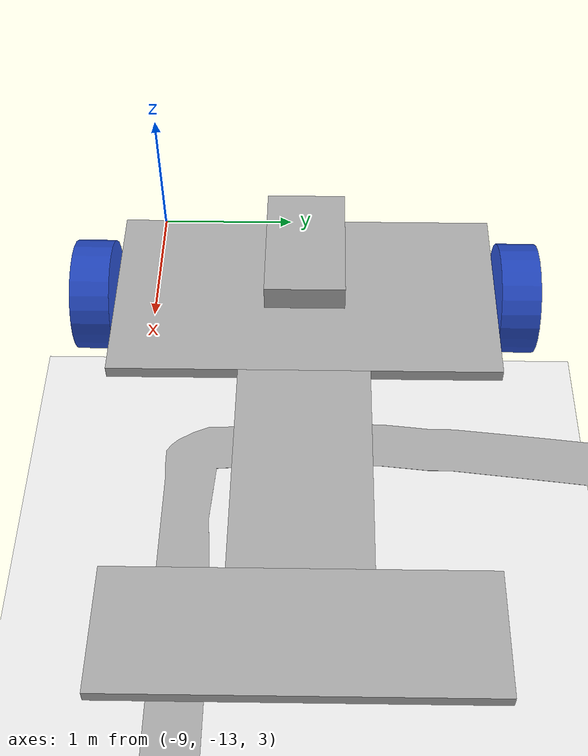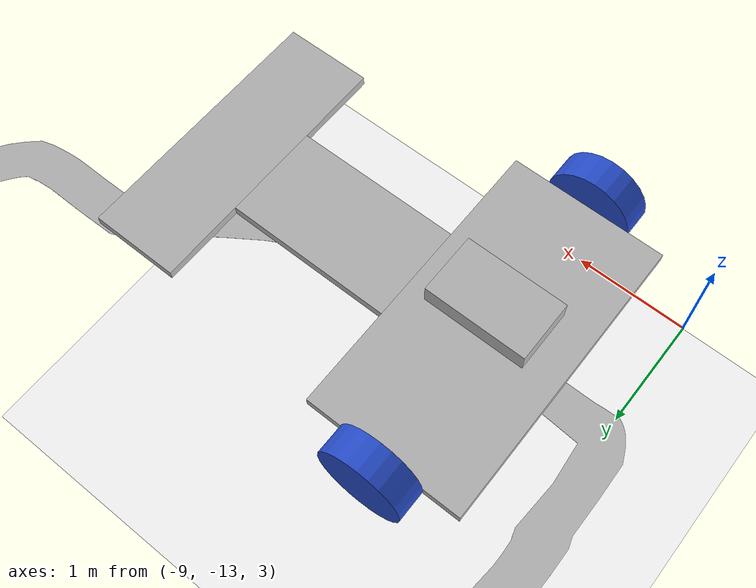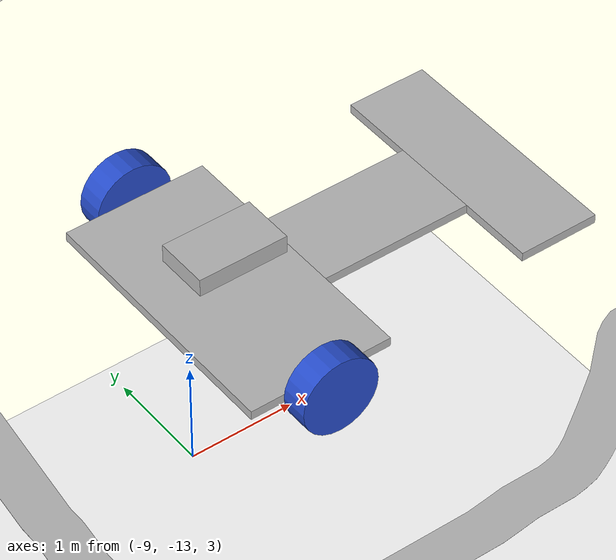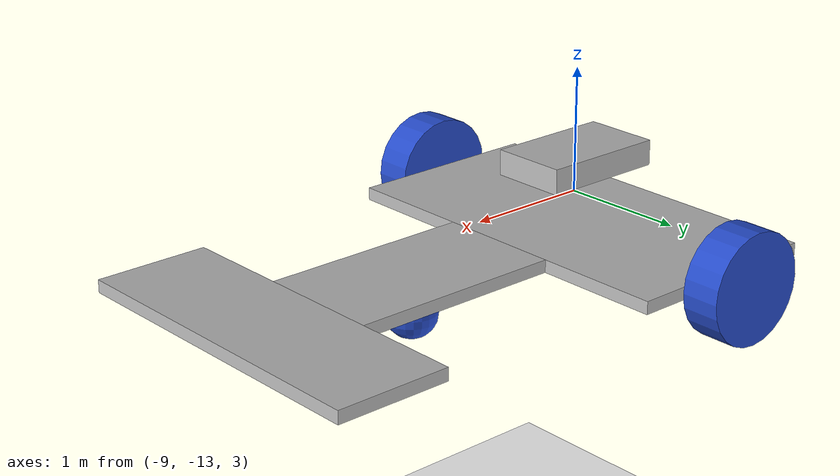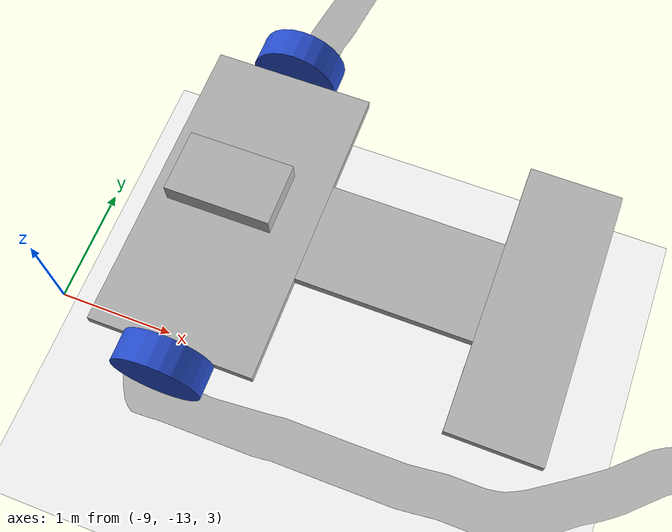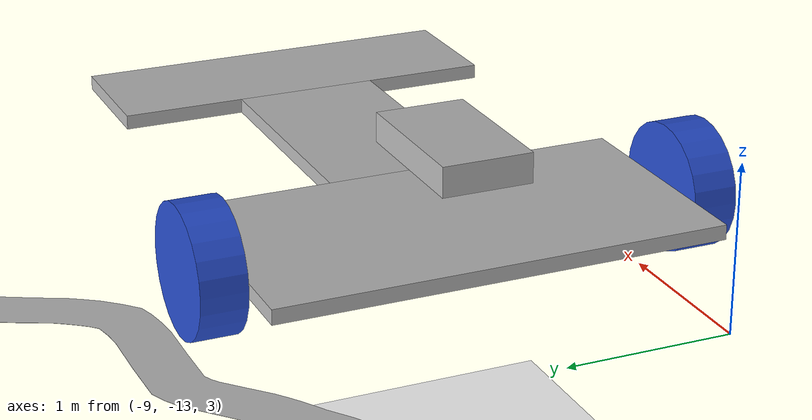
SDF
<sdf version='1.7'>
  <world name='line_follower'>
    <plugin name='gazebo_ros_init' filename='libgazebo_ros_init.so'/>
    <plugin name='gazebo_ros_factory' filename='libgazebo_ros_factory.so'/>
    <plugin name='gazebo_ros_api_plugin' filename='libgazebo_ros_api_plugin.so'/>
    <plugin name='gazebo_ros_state' filename='libgazebo_ros_state.so'/>
    <light name='sun_light' type='directional'>
      <cast_shadows>1</cast_shadows>
      <pose>0 0 10 0 -0 0</pose>
      <diffuse>0.8 0.8 0.8 1</diffuse>
      <specular>0.2 0.2 0.2 1</specular>
      <attenuation>
        <range>1000</range>
        <constant>0.9</constant>
        <linear>0.01</linear>
        <quadratic>0.001</quadratic>
      </attenuation>
      <direction>-0.5 0.1 -0.9</direction>
    </light>
    <model name='high_reflective_plane'>
      <static>1</static>
      <link name='link'>
        <collision name='collision'>
          <geometry>
            <plane>
              <normal>0 0 1</normal>
              <size>100 100</size>
            </plane>
          </geometry>
          <surface>
            <friction>
              <ode>
                <mu>5</mu>
                <mu2>1</mu2>
              </ode>
            </friction>
            <contact>
              <ode>
                <laser_retro>1.0</laser_retro>
              </ode>
            </contact>
          </surface>
        </collision>
        <visual name='visual'>
          <cast_shadows>0</cast_shadows>
          <geometry>
            <plane>
              <normal>0 0 1</normal>
              <size>100 100</size>
            </plane>
          </geometry>
          <material>
            <ambient>1 1 1 1</ambient>
            <diffuse>1 1 1 1</diffuse>
            <specular>1 1 1 1</specular>
            <emissive>0 0 0 1</emissive>
          </material>
        </visual>
      </link>
    </model>
    <model name='line_following_track'>
      <static>1</static>
      <link name='tinker_link'>
        <visual name='tinker_visual'>
          <geometry>
            <mesh>
              <uri>model://tinker/meshes/tinker.obj</uri>
              <scale>0.25 0.25 0.25</scale>
            </mesh>
          </geometry>
          <material>
            <script>
              <uri>model://tinker/meshes/obj.mtl</uri>
              <name>tinker_material</name>
            </script>
          </material>
        </visual>
        <collision name='tinker_collision'>
          <geometry>
            <mesh>
              <uri>model://tinker/meshes/tinker.obj</uri>
              <scale>0.25 0.25 0.25</scale>
            </mesh>
          </geometry>
          <laser_retro>200</laser_retro>
          <surface>
            <contact>
              <collide_without_contact>1</collide_without_contact>
              <collide_without_contact_bitmask>1</collide_without_contact_bitmask>
            </contact>
          </surface>
        </collision>
      </link>
    </model>
    <model name='line_follower_robot'>
      <link name='base_footprint'>
        <inertial>
          <pose>1.47813 0 0.379649 0 -0 0</pose>
          <mass>6.55</mass>
          <inertia>
            <ixx>0.272886</ixx>
            <ixy>-1.63324e-17</ixy>
            <ixz>0.0424508</ixz>
            <iyy>7.86908</iyy>
            <iyz>7.65344e-19</iyz>
            <izz>8.10009</izz>
          </inertia>
        </inertial>
        <collision name='base_footprint_fixed_joint_lump__base_link_collision'>
          <pose>0 0 0.387 0 -0 0</pose>
          <geometry>
            <box>
              <size>1.44 2.7 0.09</size>
            </box>
          </geometry>
        </collision>
        <collision name='base_footprint_fixed_joint_lump__ir_link_collision_1'>
          <pose>2.655 0 0.387 0 -0 0</pose>
          <geometry>
            <box>
              <size>0.81 2.43 0.09</size>
            </box>
          </geometry>
        </collision>
        <collision name='base_footprint_fixed_joint_lump__ir_sensor_1_collision_2'>
          <pose>2.65507 0 0.225 3.14159 1.57079 3.14159</pose>
          <geometry>
            <box>
              <size>0.18 0.054 0.054</size>
            </box>
          </geometry>
          <surface>
            <contact>
              <ode/>
            </contact>
            <friction>
              <ode/>
            </friction>
          </surface>
        </collision>
        <collision name='base_footprint_fixed_joint_lump__ir_sensor_2_collision_3'>
          <pose>2.655 0.486 0.315 3.14159 1.57079 3.14159</pose>
          <geometry>
            <box>
              <size>0.18 0.054 0.054</size>
            </box>
          </geometry>
          <surface>
            <contact>
              <ode/>
            </contact>
            <friction>
              <ode/>
            </friction>
          </surface>
        </collision>
        <collision name='base_footprint_fixed_joint_lump__ir_sensor_3_collision_4'>
          <pose>2.655 0.972 0.315 3.14159 1.57079 3.14159</pose>
          <geometry>
            <box>
              <size>0.18 0.054 0.054</size>
            </box>
          </geometry>
          <surface>
            <contact>
              <ode/>
            </contact>
            <friction>
              <ode/>
            </friction>
          </surface>
        </collision>
        <collision name='base_footprint_fixed_joint_lump__ir_sensor_4_collision_5'>
          <pose>2.655 -0.486 0.315 3.14159 1.57079 3.14159</pose>
          <geometry>
            <box>
              <size>0.18 0.054 0.054</size>
            </box>
          </geometry>
          <surface>
            <contact>
              <ode/>
            </contact>
            <friction>
              <ode/>
            </friction>
          </surface>
        </collision>
        <collision name='base_footprint_fixed_joint_lump__ir_sensor_5_collision_6'>
          <pose>2.655 -0.972 0.315 3.14159 1.57079 3.14159</pose>
          <geometry>
            <box>
              <size>0.18 0.054 0.054</size>
            </box>
          </geometry>
          <surface>
            <contact>
              <ode/>
            </contact>
            <friction>
              <ode/>
            </friction>
          </surface>
        </collision>
        <collision name='base_footprint_fixed_joint_lump__neck_link_collision_7'>
          <pose>1.485 0 0.387 0 -0 0</pose>
          <geometry>
            <box>
              <size>1.53 0.9 0.09</size>
            </box>
          </geometry>
        </collision>
        <collision name='base_footprint_fixed_joint_lump__caster_wheel_collision_8'>
          <pose>1.485 0 0.144 0 -0 0</pose>
          <geometry>
            <sphere>
              <radius>0.18</radius>
            </sphere>
          </geometry>
          <surface>
            <contact>
              <ode/>
            </contact>
            <friction>
              <ode>
                <mu>5e-06</mu>
                <mu2>5e-06</mu2>
              </ode>
            </friction>
          </surface>
        </collision>
        <visual name='base_footprint_fixed_joint_lump__base_link_visual'>
          <pose>0 0 0.387 0 -0 0</pose>
          <geometry>
            <box>
              <size>1.44 2.7 0.09</size>
            </box>
          </geometry>
        </visual>
        <visual name='base_footprint_fixed_joint_lump__ir_link_visual_1'>
          <pose>2.655 0 0.387 0 -0 0</pose>
          <geometry>
            <box>
              <size>0.81 2.43 0.09</size>
            </box>
          </geometry>
        </visual>
        <visual name='base_footprint_fixed_joint_lump__ir_sensor_1_visual_2'>
          <pose>2.745 0 0.315072 3.14159 1.57079 3.14159</pose>
          <geometry>
            <box>
              <size>0.054 0.054 0.18</size>
            </box>
          </geometry>
        </visual>
        <visual name='base_footprint_fixed_joint_lump__ir_sensor_2_visual_3'>
          <pose>2.745 0.486 0.315072 3.14159 1.57079 3.14159</pose>
          <geometry>
            <box>
              <size>0.054 0.054 0.18</size>
            </box>
          </geometry>
        </visual>
        <visual name='base_footprint_fixed_joint_lump__ir_sensor_3_visual_4'>
          <pose>2.745 0.972 0.315072 3.14159 1.57079 3.14159</pose>
          <geometry>
            <box>
              <size>0.054 0.054 0.18</size>
            </box>
          </geometry>
        </visual>
        <visual name='base_footprint_fixed_joint_lump__ir_sensor_4_visual_5'>
          <pose>2.745 -0.486 0.315072 3.14159 1.57079 3.14159</pose>
          <geometry>
            <box>
              <size>0.054 0.054 0.18</size>
            </box>
          </geometry>
        </visual>
        <visual name='base_footprint_fixed_joint_lump__ir_sensor_5_visual_6'>
          <pose>2.745 -0.972 0.315072 3.14159 1.57079 3.14159</pose>
          <geometry>
            <box>
              <size>0.054 0.054 0.18</size>
            </box>
          </geometry>
        </visual>
        <visual name='base_footprint_fixed_joint_lump__neck_link_visual_7'>
          <pose>1.485 0 0.387 0 -0 0</pose>
          <geometry>
            <box>
              <size>1.53 0.9 0.09</size>
            </box>
          </geometry>
        </visual>
        <visual name='base_footprint_fixed_joint_lump__caster_wheel_visual_8'>
          <pose>1.485 0 0.144 0 -0 0</pose>
          <geometry>
            <sphere>
              <radius>0.18</radius>
            </sphere>
          </geometry>
          <material>
            <script>
              <name>Gazebo/Blue</name>
              <uri>file://media/materials/scripts/gazebo.material</uri>
            </script>
          </material>
        </visual>
        <visual name='base_footprint_fixed_joint_lump__test_link_visual_9'>
          <pose>0 0 0.8496 3.14159 1.57079 3.14159</pose>
          <geometry>
            <box>
              <size>0.18 0.54 0.9</size>
            </box>
          </geometry>
        </visual>
        <sensor name='ir_sensor_1' type='ray'>
          <update_rate>30</update_rate>
          <visualize>1</visualize>
          <ray>
            <scan>
              <horizontal>
                <samples>10</samples>
                <resolution>1</resolution>
                <min_angle>-0.1</min_angle>
                <max_angle>0.1</max_angle>
              </horizontal>
            </scan>
            <range>
              <min>0.3</min>
              <max>2</max>
              <resolution>0.01</resolution>
            </range>
          </ray>
          <plugin name='ir_sensor_1_plugin' filename='libgazebo_ros_ray_sensor.so'>
            <ros>
              <namespace>/</namespace>
              <remapping>~/out:=/ir_sensor_1</remapping>
            </ros>
            <output_type>sensor_msgs/LaserScan</output_type>
            <frame_name>ir_sensor_1</frame_name>
          </plugin>
          <pose>2.655 0 0.315 3.14159 1.57079 3.14159</pose>
        </sensor>
        <sensor name='ir_sensor_2' type='ray'>
          <update_rate>30</update_rate>
          <visualize>1</visualize>
          <ray>
            <scan>
              <horizontal>
                <samples>10</samples>
                <resolution>1</resolution>
                <min_angle>-0.1</min_angle>
                <max_angle>0.1</max_angle>
              </horizontal>
            </scan>
            <range>
              <min>0.3</min>
              <max>2</max>
              <resolution>0.01</resolution>
            </range>
          </ray>
          <plugin name='ir_sensor_2_plugin' filename='libgazebo_ros_ray_sensor.so'>
            <ros>
              <namespace>/</namespace>
              <remapping>~/out:=/ir_sensor_2</remapping>
            </ros>
            <output_type>sensor_msgs/LaserScan</output_type>
            <frame_name>ir_sensor_2</frame_name>
          </plugin>
          <pose>2.655 0.486 0.315 3.14159 1.57079 3.14159</pose>
        </sensor>
        <sensor name='ir_sensor_3' type='ray'>
          <update_rate>30</update_rate>
          <visualize>1</visualize>
          <ray>
            <scan>
              <horizontal>
                <samples>10</samples>
                <resolution>1</resolution>
                <min_angle>-0.1</min_angle>
                <max_angle>0.1</max_angle>
              </horizontal>
            </scan>
            <range>
              <min>0.3</min>
              <max>2</max>
              <resolution>0.01</resolution>
            </range>
          </ray>
          <plugin name='ir_sensor_3_plugin' filename='libgazebo_ros_ray_sensor.so'>
            <ros>
              <namespace>/</namespace>
              <remapping>~/out:=/ir_sensor_3</remapping>
            </ros>
            <output_type>sensor_msgs/LaserScan</output_type>
            <frame_name>ir_sensor_3</frame_name>
          </plugin>
          <pose>2.655 0.972 0.315 3.14159 1.57079 3.14159</pose>
        </sensor>
        <sensor name='ir_sensor_4' type='ray'>
          <update_rate>30</update_rate>
          <visualize>1</visualize>
          <ray>
            <scan>
              <horizontal>
                <samples>10</samples>
                <resolution>1</resolution>
                <min_angle>-0.1</min_angle>
                <max_angle>0.1</max_angle>
              </horizontal>
            </scan>
            <range>
              <min>0.3</min>
              <max>2</max>
              <resolution>0.01</resolution>
            </range>
          </ray>
          <plugin name='ir_sensor_4_plugin' filename='libgazebo_ros_ray_sensor.so'>
            <ros>
              <namespace>/</namespace>
              <remapping>~/out:=/ir_sensor_4</remapping>
            </ros>
            <output_type>sensor_msgs/LaserScan</output_type>
            <frame_name>ir_sensor_4</frame_name>
          </plugin>
          <pose>2.655 -0.486 0.315 3.14159 1.57079 3.14159</pose>
        </sensor>
        <sensor name='ir_sensor_5' type='ray'>
          <update_rate>30</update_rate>
          <visualize>1</visualize>
          <ray>
            <scan>
              <horizontal>
                <samples>10</samples>
                <resolution>1</resolution>
                <min_angle>-0.1</min_angle>
                <max_angle>0.1</max_angle>
              </horizontal>
            </scan>
            <range>
              <min>0.3</min>
              <max>2</max>
              <resolution>0.01</resolution>
            </range>
          </ray>
          <plugin name='ir_sensor_5_plugin' filename='libgazebo_ros_ray_sensor.so'>
            <ros>
              <namespace>/</namespace>
              <remapping>~/out:=/ir_sensor_5</remapping>
            </ros>
            <output_type>sensor_msgs/LaserScan</output_type>
            <frame_name>ir_sensor_5</frame_name>
          </plugin>
          <pose>2.655 -0.972 0.315 3.14159 1.57079 3.14159</pose>
        </sensor>
        <sensor name='test_sensor' type='ray'>
          <update_rate>30</update_rate>
          <visualize>1</visualize>
          <ray>
            <scan>
              <horizontal>
                <samples>10</samples>
                <resolution>1</resolution>
                <min_angle>-0.1</min_angle>
                <max_angle>0.1</max_angle>
              </horizontal>
            </scan>
            <range>
              <min>0.01</min>
              <max>1</max>
              <resolution>0.01</resolution>
            </range>
          </ray>
          <plugin name='sensor_plugin' filename='libgazebo_ros_ray_sensor.so'>
            <ros>
              <namespace>/</namespace>
              <remapping>~/out:=/test_sensor</remapping>
            </ros>
            <output_type>sensor_msgs/LaserScan</output_type>
            <frame_name>sensor_link</frame_name>
          </plugin>
          <pose>0 0 0.8496 3.14159 1.57079 3.14159</pose>
        </sensor>
      </link>
      <joint name='base_left_wheel_joint' type='revolute'>
        <pose relative_to='base_footprint'>0 1.485 0.387 -1.5708 0 0</pose>
        <parent>base_footprint</parent>
        <child>left_wheel</child>
        <axis>
          <xyz>0 0 1</xyz>
          <limit>
            <lower>-1e+16</lower>
            <upper>1e+16</upper>
          </limit>
          <dynamics>
            <damping>0.5</damping>
            <friction>0.5</friction>
            <spring_reference>0</spring_reference>
            <spring_stiffness>0</spring_stiffness>
          </dynamics>
        </axis>
      </joint>
      <link name='left_wheel'>
        <pose relative_to='base_left_wheel_joint'>0 0 0 0 -0 0</pose>
        <inertial>
          <pose>0 0 0 0 -0 0</pose>
          <mass>0.1</mass>
          <inertia>
            <ixx>1e-05</ixx>
            <ixy>0</ixy>
            <ixz>0</ixz>
            <iyy>1e-05</iyy>
            <iyz>0</iyz>
            <izz>2e-05</izz>
          </inertia>
        </inertial>
        <collision name='left_wheel_collision'>
          <pose>0 0 0 0 -0 0</pose>
          <geometry>
            <cylinder>
              <length>0.27</length>
              <radius>0.387</radius>
            </cylinder>
          </geometry>
          <surface>
            <contact>
              <ode>
                <kp>1000</kp>
                <kd>100</kd>
              </ode>
            </contact>
            <friction>
              <ode>
                <mu>1</mu>
                <mu2>1</mu2>
                <fdir1>1 0 0</fdir1>
              </ode>
            </friction>
          </surface>
        </collision>
        <visual name='left_wheel_visual'>
          <pose>0 0 0 0 -0 0</pose>
          <geometry>
            <cylinder>
              <length>0.27</length>
              <radius>0.387</radius>
            </cylinder>
          </geometry>
          <material>
            <script>
              <name>Gazebo/Blue</name>
              <uri>file://media/materials/scripts/gazebo.material</uri>
            </script>
          </material>
        </visual>
      </link>
      <joint name='base_right_wheel_joint' type='revolute'>
        <pose relative_to='base_footprint'>0 -1.485 0.387 -1.5708 0 0</pose>
        <parent>base_footprint</parent>
        <child>right_wheel</child>
        <axis>
          <xyz>0 0 1</xyz>
          <limit>
            <lower>-1e+16</lower>
            <upper>1e+16</upper>
          </limit>
          <dynamics>
            <damping>0.5</damping>
            <friction>0.5</friction>
            <spring_reference>0</spring_reference>
            <spring_stiffness>0</spring_stiffness>
          </dynamics>
        </axis>
      </joint>
      <link name='right_wheel'>
        <pose relative_to='base_right_wheel_joint'>0 0 0 0 -0 0</pose>
        <inertial>
          <pose>0 0 0 0 -0 0</pose>
          <mass>0.1</mass>
          <inertia>
            <ixx>1e-05</ixx>
            <ixy>0</ixy>
            <ixz>0</ixz>
            <iyy>1e-05</iyy>
            <iyz>0</iyz>
            <izz>2e-05</izz>
          </inertia>
        </inertial>
        <collision name='right_wheel_collision'>
          <pose>0 0 0 0 -0 0</pose>
          <geometry>
            <cylinder>
              <length>0.27</length>
              <radius>0.387</radius>
            </cylinder>
          </geometry>
          <surface>
            <contact>
              <ode>
                <kp>1000</kp>
                <kd>100</kd>
              </ode>
            </contact>
            <friction>
              <ode>
                <mu>1</mu>
                <mu2>1</mu2>
                <fdir1>1 0 0</fdir1>
              </ode>
            </friction>
          </surface>
        </collision>
        <visual name='right_wheel_visual'>
          <pose>0 0 0 0 -0 0</pose>
          <geometry>
            <cylinder>
              <length>0.27</length>
              <radius>0.387</radius>
            </cylinder>
          </geometry>
          <material>
            <script>
              <name>Gazebo/Blue</name>
              <uri>file://media/materials/scripts/gazebo.material</uri>
            </script>
          </material>
        </visual>
      </link>
      <static>0</static>
      <plugin name='differential_drive_controller' filename='libgazebo_ros_diff_drive.so'>
        <update_rate>30</update_rate>
        <left_joint>base_left_wheel_joint</left_joint>
        <right_joint>base_right_wheel_joint</right_joint>
        <wheel_separation>2.9699999999999998</wheel_separation>
        <wheel_diameter>0.7739999999999999</wheel_diameter>
        <max_wheel_acceleration>1.0</max_wheel_acceleration>
        <max_wheel_torque>20</max_wheel_torque>
        <command_topic>cmd_vel</command_topic>
        <publish_odom>1</publish_odom>
        <publish_odom_tf>1</publish_odom_tf>
        <odometry_topic>odom</odometry_topic>
        <odometry_frame>odom</odometry_frame>
        <robot_base_frame>base_link</robot_base_frame>
      </plugin>
      <pose>-7.84 -11.87 3 0 -0 0</pose>
    </model>
    <gravity>0 0 -9.8</gravity>
    <magnetic_field>6e-06 2.3e-05 -4.2e-05</magnetic_field>
    <atmosphere type='adiabatic'/>
    <physics type='ode'>
      <max_step_size>0.001</max_step_size>
      <real_time_factor>1</real_time_factor>
      <real_time_update_rate>1000</real_time_update_rate>
    </physics>
    <scene>
      <ambient>0.4 0.4 0.4 1</ambient>
      <background>0.7 0.7 0.7 1</background>
      <shadows>1</shadows>
    </scene>
  </world>
</sdf>
